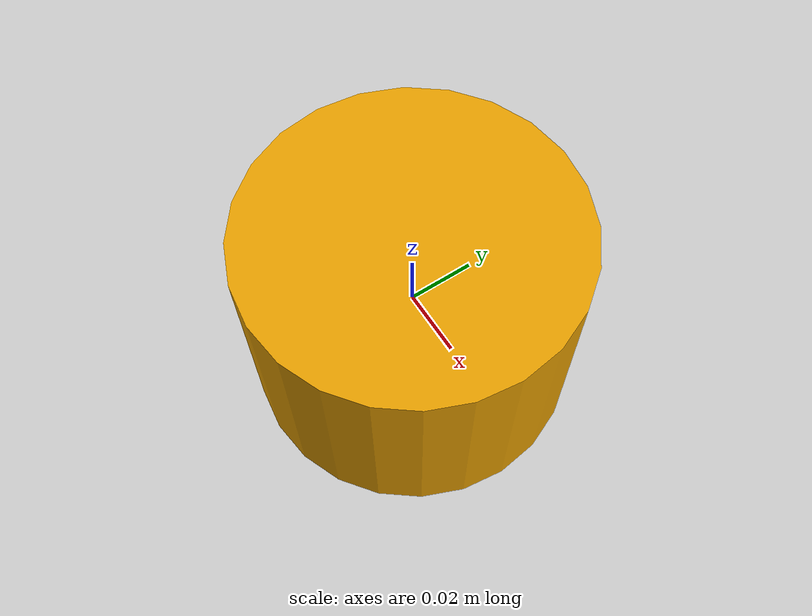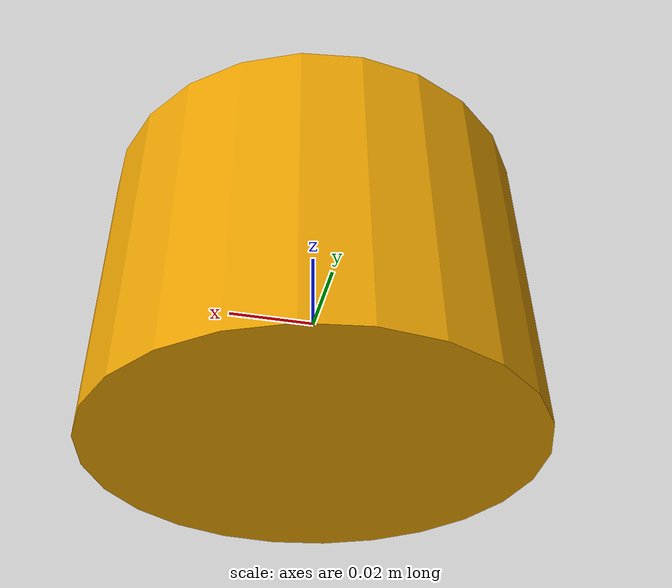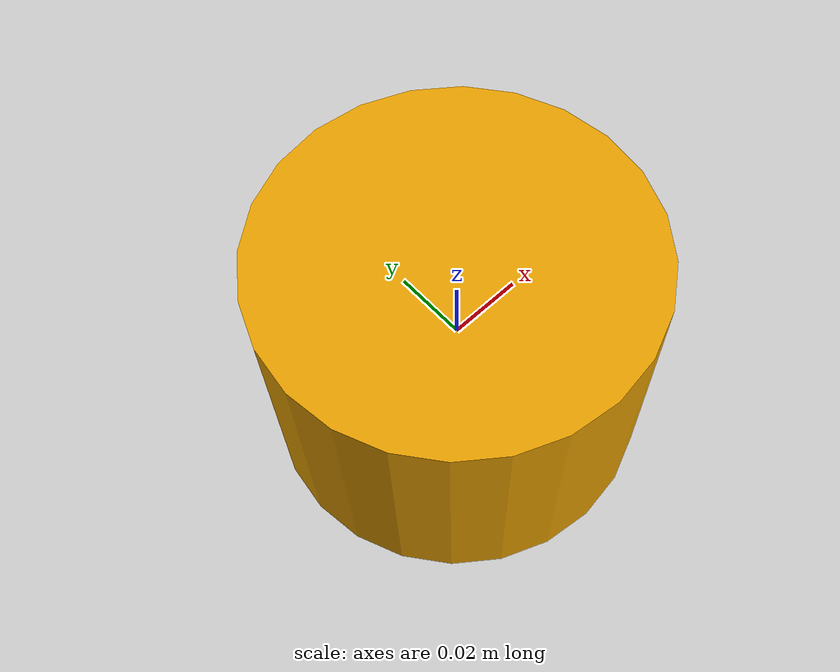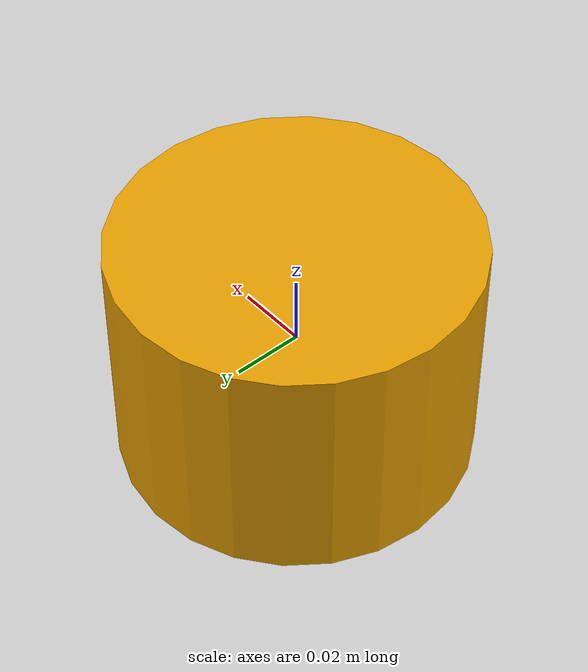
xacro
<?xml version="1.0" ?>
<robot xmlns:xacro="http://www.ros.org/wiki/xacro" name="VLP-16">
    <!-- Velodyne -->
    <link name="velodyne">
        <visual name="visual">
            <geometry>
                <cylinder length="0.07" radius="0.05"/>
            </geometry>
        </visual>
        <inertial>
            <mass value="0.001"/>
            <inertia ixx="0.001" ixy="0" ixz="0" iyy="0.001" iyz="0" izz="0.001"/>
        </inertial>
    </link>
    <gazebo reference="velodyne">
        <sensor name='VLP-16' type='gpu_lidar'>
            <gz_frame_id>velodyne</gz_frame_id> <!-- Change to frame_id when sdformat_urdf's parser supports sdf spec 1.12 -->
            <topic>velodyne</topic>
            <update_rate>10</update_rate>
            <ray>
                <scan>
                    <horizontal>
                        <samples>1800</samples>
                        <resolution>0.003490659</resolution> <!-- 0.2 degrees -->
                        <min_angle>-0.785398</min_angle>
                        <max_angle>0.785398</max_angle>
                    </horizontal>
                    <vertical>
                        <samples>16</samples>
                        <resolution>0.034906585</resolution>
                        <min_angle>-0.26179938</min_angle>
                        <max_angle>0.26179939</max_angle>
                    </vertical>
                </scan>
                <range>
                    <min>1.5</min>
                    <max>100.0</max>
                    <resolution>0.002</resolution>
                </range>
            </ray>
            <always_on>1</always_on>
            <visualize>true</visualize>
        </sensor>
    </gazebo>
</robot>
